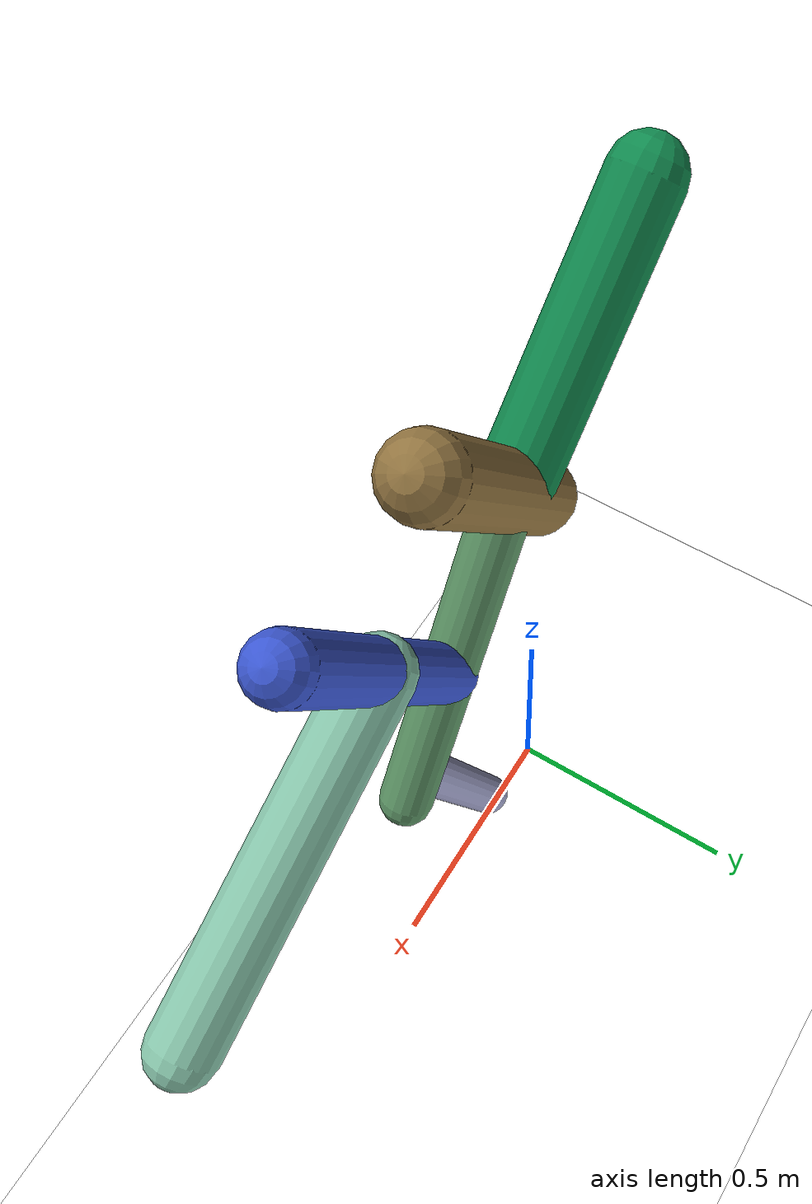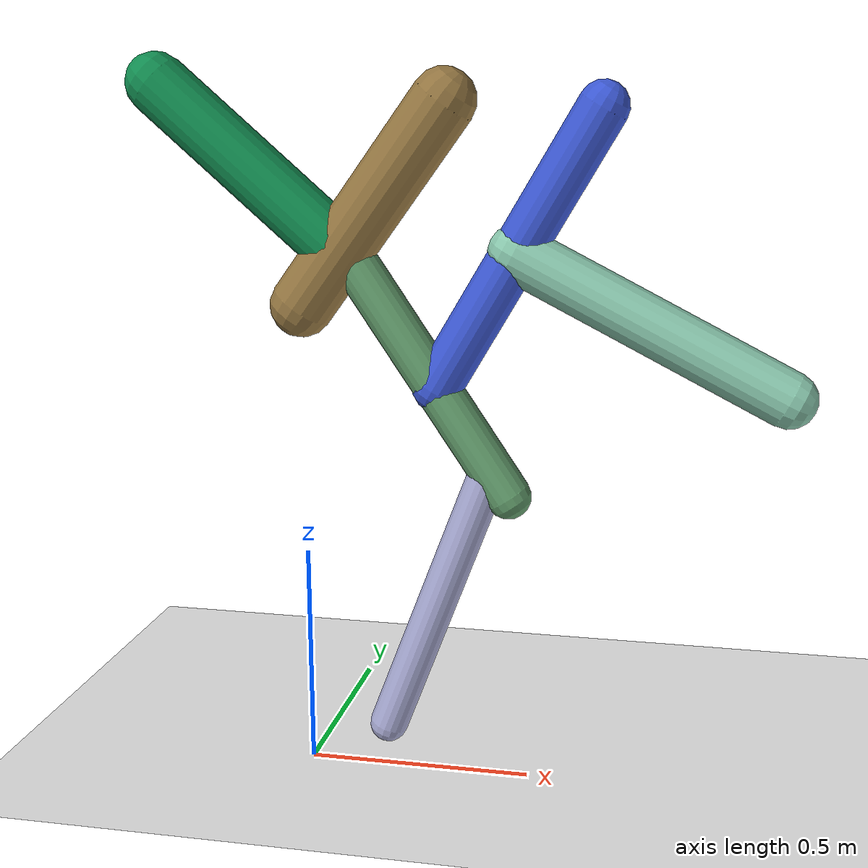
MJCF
<mujoco model="morphology">
  <option timestep="0.01"/>
  <default>
    <default class="/"/>
    <default class="0/"/>
    <default class="0/1/"/>
    <default class="0/1/2/"/>
    <default class="0/1/2/3/"/>
    <default class="0/1/4/"/>
    <default class="0/5/"/>
  </default>
  <asset>
    <texture name="texplane" type="2d" builtin="checker" rgb1="0.10000000000000001 0.20000000000000001 0.29999999999999999" rgb2="0.20000000000000001 0.29999999999999999 0.40000000000000002" width="300" height="300"/>
    <material name="MatPlane" class="/" texture="texplane" texrepeat="20 20" specular="1" shininess="1" reflectance="0.5"/>
  </asset>
  <worldbody>
    <light name="//unnamed_light_0" class="/" directional="true" pos="0 0 1.5" dir="0 0 -1.3" cutoff="100" exponent="1" diffuse="1 1 1" specular="0.10000000000000001 0.10000000000000001 0.10000000000000001"/>
    <geom name="ground" class="/" type="plane" size="15 15 0.5" material="MatPlane" rgba="1 1 1 1"/>
    <site name="body" class="/" size="9.9999999999999995e-07 9.9999999999999995e-07 9.9999999999999995e-07" pos="0 0 1.0582704901695252"/>
    <body pos="0 0 1.0582704901695252" name="0/">
      <joint name="0/rootx/" class="/" type="slide" axis="1 0 0" limited="false" stiffness="0" armature="0" damping="0"/>
      <joint name="0/rootz/" class="/" type="slide" axis="0 0 1" limited="false" stiffness="0" armature="0" damping="0"/>
      <joint name="0/rooty/" class="/" type="hinge" axis="0 1 0" limited="false" stiffness="0" armature="0" damping="0"/>
      <geom name="0/geom" class="0/" type="capsule" contype="1" conaffinity="1" condim="3" size="0.069460359054520124" rgba="0.57414862806657507 0.45870240132061202 0.25353715799936338 1" friction="0.59999999999999998 0.10000000000000001 0.10000000000000001" fromto="0 0 0 0.31375678299270304 0 0.43176578647815567"/>
      <site name="0/end0" class="0/" size="0.0050000000000000001" pos="0.31375678299270304 0 0.43176578647815567"/>
      <site name="0/attach1" class="0/" size="9.9999999999999995e-07 9.9999999999999995e-07 9.9999999999999995e-07" pos="0.094967880340001559 0 0.13068683696351441"/>
      <body pos="0.094967880340001559 0 0.13068683696351441" name="0/1/">
        <joint name="0/1/joint/" class="0/" type="hinge" axis="0 1 0" limited="true" range="-40.753402435402634 40.753402435402634"/>
        <geom name="0/1/geom" class="0/1/" type="capsule" contype="1" conaffinity="1" condim="3" size="0.049580794322380814" rgba="0.38170799909604936 0.61046335986951628 0.41964594417696854 1" friction="0.59999999999999998 0.10000000000000001 0.10000000000000001" fromto="0 0 0 0.35911418409147489 0 -0.53433147263097092"/>
        <site name="0/1/end1" class="0/1/" size="0.0050000000000000001" pos="0.35911418409147489 0 -0.53433147263097092"/>
        <site name="0/1/attach2" class="0/1/" size="9.9999999999999995e-07 9.9999999999999995e-07 9.9999999999999995e-07" pos="0.20101405482414383 0 -0.29909187854954822"/>
        <body pos="0.20101405482414383 0 -0.29909187854954822" name="0/1/2/">
          <joint name="0/1/2/joint/" class="0/1/" type="hinge" axis="0 1 0" limited="true" range="-61.719152532474972 61.719152532474972"/>
          <geom name="0/1/2/geom" class="0/1/2/" type="capsule" contype="1" conaffinity="1" condim="3" size="0.053432612443258649" rgba="0.2330979670595682 0.34614972070884431 0.82768079715777931 1" friction="0.59999999999999998 0.10000000000000001 0.10000000000000001" fromto="0 0 0 0.34534523471726764 0 0.58974673691139201"/>
          <site name="0/1/2/end2" class="0/1/2/" size="0.0050000000000000001" pos="0.34534523471726764 0 0.58974673691139201"/>
          <site name="0/1/2/attach3" class="0/1/2/" size="9.9999999999999995e-07 9.9999999999999995e-07 9.9999999999999995e-07" pos="0.1705907420556573 0 0.29131814590400223"/>
          <body pos="0.1705907420556573 0 0.29131814590400223" name="0/1/2/3/">
            <joint name="0/1/2/3/joint/" class="0/1/2/" type="hinge" axis="0 1 0" limited="true" range="-49.410497665575832 49.410497665575832"/>
            <geom name="0/1/2/3/geom" class="0/1/2/3/" type="capsule" contype="1" conaffinity="1" condim="3" size="0.060975155400523964" rgba="0.53196207665663808 0.77434867964845466 0.67123300591607205 1" friction="0.59999999999999998 0.10000000000000001 0.10000000000000001" fromto="0 0 0 0.56610140248965646 0 -0.28682878251624244"/>
            <site name="0/1/2/3/end3" class="0/1/2/3/" size="0.0050000000000000001" pos="0.56610140248965646 0 -0.28682878251624244"/>
          </body>
        </body>
        <site name="0/1/attach4" class="0/1/" size="9.9999999999999995e-07 9.9999999999999995e-07 9.9999999999999995e-07" pos="0.31851820919060331 0 -0.47392810230308868"/>
        <body pos="0.31851820919060331 0 -0.47392810230308868" name="0/1/4/">
          <geom name="0/1/4/geom" class="0/1/4/" type="capsule" contype="1" conaffinity="1" condim="3" size="0.043110726785911227" rgba="0.64635259546588431 0.65504917857849487 0.81222946692901787 1" friction="0.59999999999999998 0.10000000000000001 0.10000000000000001" fromto="0 0 0 -0.23272406979629867 0 -0.61502922892054679"/>
          <site name="0/1/4/end4" class="0/1/4/" size="0.0050000000000000001" pos="-0.23272406979629867 0 -0.61502922892054679"/>
        </body>
      </body>
      <site name="0/attach5" class="0/" size="9.9999999999999995e-07 9.9999999999999995e-07 9.9999999999999995e-07" pos="0.087426780474961815 0 0.12030940740459735"/>
      <body pos="0.087426780474961815 0 0.12030940740459735" name="0/5/">
        <joint name="0/5/joint/" class="0/" type="hinge" axis="0 1 0" limited="true" range="-44.700962991635734 44.700962991635734"/>
        <geom name="0/5/geom" class="0/5/" type="capsule" contype="1" conaffinity="1" condim="3" size="0.066902995666053913" rgba="0.065479641411360312 0.54630569359074566 0.31306064080960039 1" friction="0.59999999999999998 0.10000000000000001 0.10000000000000001" fromto="0 0 0 -0.39542292027390374 0 0.34415912515689828"/>
        <site name="0/5/end5" class="0/5/" size="0.0050000000000000001" pos="-0.39542292027390374 0 0.34415912515689828"/>
      </body>
      <camera name="0/side" class="0/" mode="trackcom" pos="0.40000000000000002 -4 0.20000000000000001" quat="0.70699999999999996 0.70699999999999996 0 0"/>
    </body>
  </worldbody>
  <actuator>
    <motor name="0/1/motor" class="0/1/" ctrllimited="true" ctrlrange="-1 1" gear="66" joint="0/1/joint/"/>
    <motor name="0/1/2/motor" class="0/1/2/" ctrllimited="true" ctrlrange="-1 1" gear="88" joint="0/1/2/joint/"/>
    <motor name="0/1/2/3/motor" class="0/1/2/3/" ctrllimited="true" ctrlrange="-1 1" gear="67" joint="0/1/2/3/joint/"/>
    <motor name="0/5/motor" class="0/5/" ctrllimited="true" ctrlrange="-1 1" gear="72" joint="0/5/joint/"/>
  </actuator>
  <sensor>
    <subtreelinvel name="velocity" body="0/"/>
  </sensor>
</mujoco>
